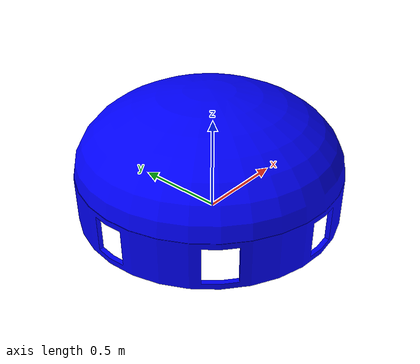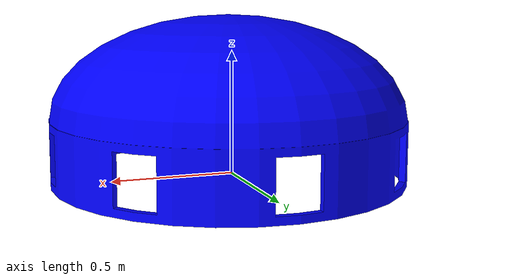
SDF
<?xml version="1.0" ?>
<sdf version="1.5">
  <model name="house">
    <static>true</static>
    <link name="link">
      <collision name="collision">
        <geometry>
          <mesh>
            <uri>model://house/meshes/house.stl</uri>
            <scale>0.01 0.01 0.01</scale>
          </mesh>
        </geometry>
      </collision>
      <visual name="visual">
        <geometry>
          <mesh>
            <uri>model://house/meshes/house.stl</uri>
            <scale>0.01 0.01 0.01</scale>
          </mesh>
        </geometry>
        <material>
          <ambient>0 0 1 1</ambient>
        </material>
      </visual>
    </link>
  </model>
</sdf>
